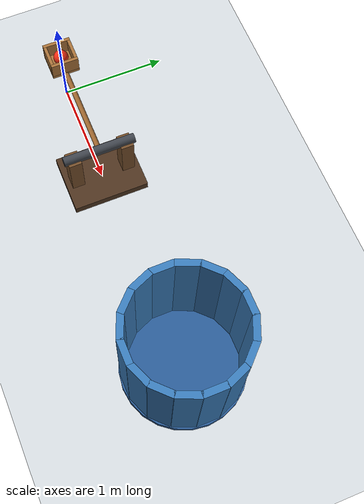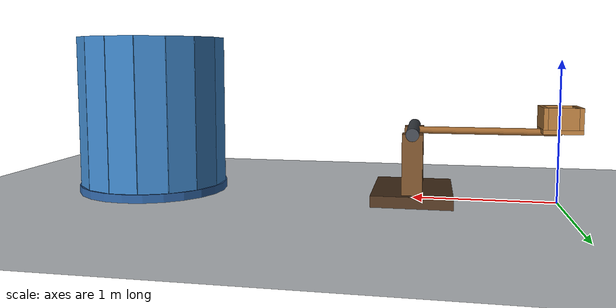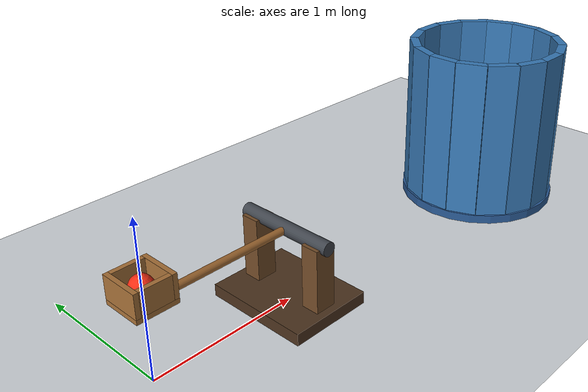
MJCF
<mujoco model="spring_catapult_into_bucket">
  <compiler angle="radian" autolimits="true"/>
  <option timestep="0.002" gravity="0 0 -9.81" integrator="implicitfast" solver="Newton" iterations="100" tolerance="1e-10"/>
  <size njmax="1000" nconmax="200"/>

  <visual>
    <global azimuth="135" elevation="-25"/>
  </visual>

  <worldbody>
    <light name="overhead" pos="1.5 -2 5" dir="0 0 -1" diffuse="0.8 0.8 0.8"/>
    <geom name="floor" type="plane" pos="0 0 0" size="6 4 0.1" friction="0.8 0.005 0.0001" rgba="0.82 0.84 0.86 1"/>

    <body name="catapult_frame" pos="1 0 0">
      <geom name="catapult_base" type="box" pos="0 0 0.04" size="0.28 0.36 0.04" contype="0" conaffinity="0" rgba="0.30 0.20 0.12 1"/>
      <geom name="catapult_support_left" type="box" pos="0 -0.25 0.27" size="0.07 0.06 0.23" contype="0" conaffinity="0" rgba="0.45 0.30 0.16 1"/>
      <geom name="catapult_support_right" type="box" pos="0 0.25 0.27" size="0.07 0.06 0.23" contype="0" conaffinity="0" rgba="0.45 0.30 0.16 1"/>
      <geom name="catapult_axle" type="cylinder" pos="0 0 0.5" quat="0.70710678 0.70710678 0 0" size="0.045 0.34" contype="0" conaffinity="0" rgba="0.25 0.27 0.30 1"/>
    </body>

    <!-- The preloaded hinge spring raises the spoon; the upper stop releases the ball. -->
    <body name="catapult_arm" pos="1 0 0.5">
      <joint name="catapult_hinge" type="hinge" axis="0 1 0" range="0 0.65" stiffness="8.3" springref="1.3" damping="0.025" solreflimit="0.004 1" solimplimit="0.999 0.999 0.001"/>
      <geom name="catapult_beam" type="capsule" fromto="0 0 0 -1 0 0" size="0.025" mass="0.18" contype="0" conaffinity="0" rgba="0.60 0.39 0.18 1"/>
      <geom name="catapult_spoon_floor" type="box" pos="-1 0 0.015" size="0.13 0.13 0.015" mass="0.045" friction="0.1 0.001 0.0001" solref="0.006 1" solimp="0.95 0.99 0.001" rgba="0.65 0.44 0.22 1"/>
      <geom name="catapult_spoon_outer_wall" type="box" pos="-1.115 0 0.105" size="0.015 0.13 0.075" mass="0.016" friction="0.1 0.001 0.0001" solref="0.006 1" solimp="0.95 0.99 0.001" rgba="0.65 0.44 0.22 1"/>
      <geom name="catapult_spoon_inner_wall" type="box" pos="-0.885 0 0.105" size="0.015 0.13 0.075" mass="0.016" friction="0.1 0.001 0.0001" solref="0.006 1" solimp="0.95 0.99 0.001" rgba="0.65 0.44 0.22 1"/>
      <geom name="catapult_spoon_left_wall" type="box" pos="-1 -0.115 0.105" size="0.10 0.015 0.075" mass="0.012" friction="0.1 0.001 0.0001" solref="0.006 1" solimp="0.95 0.99 0.001" rgba="0.65 0.44 0.22 1"/>
      <geom name="catapult_spoon_right_wall" type="box" pos="-1 0.115 0.105" size="0.10 0.015 0.075" mass="0.012" friction="0.1 0.001 0.0001" solref="0.006 1" solimp="0.95 0.99 0.001" rgba="0.65 0.44 0.22 1"/>
    </body>

    <body name="ball" pos="0 0 0.6">
      <freejoint name="ball_free"/>
      <geom name="ball" type="sphere" size="0.07" mass="0.10" friction="0.2 0.001 0.0001" solref="0.006 1" solimp="0.95 0.99 0.001" rgba="0.95 0.18 0.08 1"/>
    </body>

    <!-- Its centre is exactly 3 m from the ball's initial centre. -->
    <!-- Overlapping primitive boxes form a closed, open-topped bucket wall. -->
    <body name="bucket" pos="3 0 0.6">
      <geom name="bucket_bottom" type="cylinder" pos="0 0 -0.57" size="0.56 0.03" friction="0.8 0.005 0.0001" solref="0.01 1" rgba="0.16 0.35 0.58 1"/>
      <geom name="bucket_wall_00" type="box" pos="0.51 0 0" euler="0 0 0" size="0.03 0.105 0.57" friction="0.6 0.005 0.0001" solref="0.01 1" rgba="0.22 0.48 0.72 1"/>
      <geom name="bucket_wall_01" type="box" pos="0.471179 0.195169 0" euler="0 0 0.392699082" size="0.03 0.105 0.57" friction="0.6 0.005 0.0001" solref="0.01 1" rgba="0.22 0.48 0.72 1"/>
      <geom name="bucket_wall_02" type="box" pos="0.360624 0.360624 0" euler="0 0 0.785398163" size="0.03 0.105 0.57" friction="0.6 0.005 0.0001" solref="0.01 1" rgba="0.22 0.48 0.72 1"/>
      <geom name="bucket_wall_03" type="box" pos="0.195169 0.471179 0" euler="0 0 1.178097245" size="0.03 0.105 0.57" friction="0.6 0.005 0.0001" solref="0.01 1" rgba="0.22 0.48 0.72 1"/>
      <geom name="bucket_wall_04" type="box" pos="0 0.51 0" euler="0 0 1.570796327" size="0.03 0.105 0.57" friction="0.6 0.005 0.0001" solref="0.01 1" rgba="0.22 0.48 0.72 1"/>
      <geom name="bucket_wall_05" type="box" pos="-0.195169 0.471179 0" euler="0 0 1.963495408" size="0.03 0.105 0.57" friction="0.6 0.005 0.0001" solref="0.01 1" rgba="0.22 0.48 0.72 1"/>
      <geom name="bucket_wall_06" type="box" pos="-0.360624 0.360624 0" euler="0 0 2.356194490" size="0.03 0.105 0.57" friction="0.6 0.005 0.0001" solref="0.01 1" rgba="0.22 0.48 0.72 1"/>
      <geom name="bucket_wall_07" type="box" pos="-0.471179 0.195169 0" euler="0 0 2.748893572" size="0.03 0.105 0.57" friction="0.6 0.005 0.0001" solref="0.01 1" rgba="0.22 0.48 0.72 1"/>
      <geom name="bucket_wall_08" type="box" pos="-0.51 0 0" euler="0 0 3.141592654" size="0.03 0.105 0.57" friction="0.6 0.005 0.0001" solref="0.01 1" rgba="0.22 0.48 0.72 1"/>
      <geom name="bucket_wall_09" type="box" pos="-0.471179 -0.195169 0" euler="0 0 3.534291735" size="0.03 0.105 0.57" friction="0.6 0.005 0.0001" solref="0.01 1" rgba="0.22 0.48 0.72 1"/>
      <geom name="bucket_wall_10" type="box" pos="-0.360624 -0.360624 0" euler="0 0 3.926990817" size="0.03 0.105 0.57" friction="0.6 0.005 0.0001" solref="0.01 1" rgba="0.22 0.48 0.72 1"/>
      <geom name="bucket_wall_11" type="box" pos="-0.195169 -0.471179 0" euler="0 0 4.319689899" size="0.03 0.105 0.57" friction="0.6 0.005 0.0001" solref="0.01 1" rgba="0.22 0.48 0.72 1"/>
      <geom name="bucket_wall_12" type="box" pos="0 -0.51 0" euler="0 0 4.712388980" size="0.03 0.105 0.57" friction="0.6 0.005 0.0001" solref="0.01 1" rgba="0.22 0.48 0.72 1"/>
      <geom name="bucket_wall_13" type="box" pos="0.195169 -0.471179 0" euler="0 0 5.105088062" size="0.03 0.105 0.57" friction="0.6 0.005 0.0001" solref="0.01 1" rgba="0.22 0.48 0.72 1"/>
      <geom name="bucket_wall_14" type="box" pos="0.360624 -0.360624 0" euler="0 0 5.497787144" size="0.03 0.105 0.57" friction="0.6 0.005 0.0001" solref="0.01 1" rgba="0.22 0.48 0.72 1"/>
      <geom name="bucket_wall_15" type="box" pos="0.471179 -0.195169 0" euler="0 0 5.890486225" size="0.03 0.105 0.57" friction="0.6 0.005 0.0001" solref="0.01 1" rgba="0.22 0.48 0.72 1"/>
    </body>
  </worldbody>

  <keyframe>
    <key name="start" qpos="0 0 0 0.6 1 0 0 0" qvel="0 0 0 0 0 0 0"/>
  </keyframe>
</mujoco>
